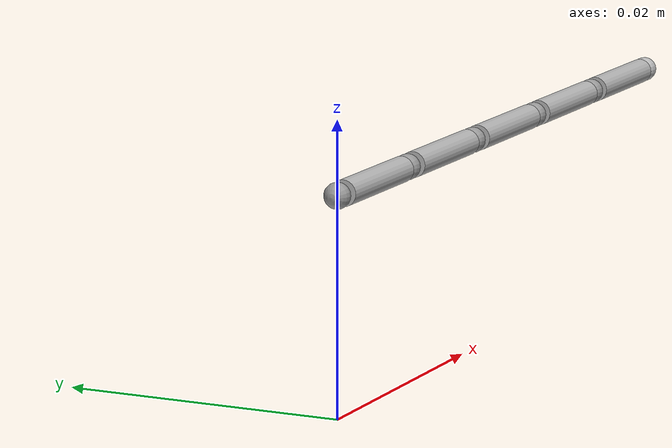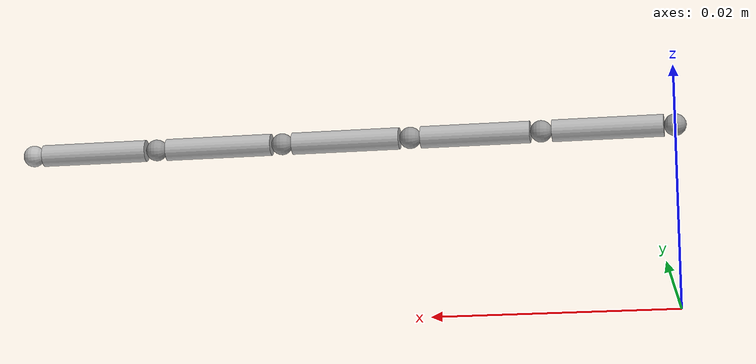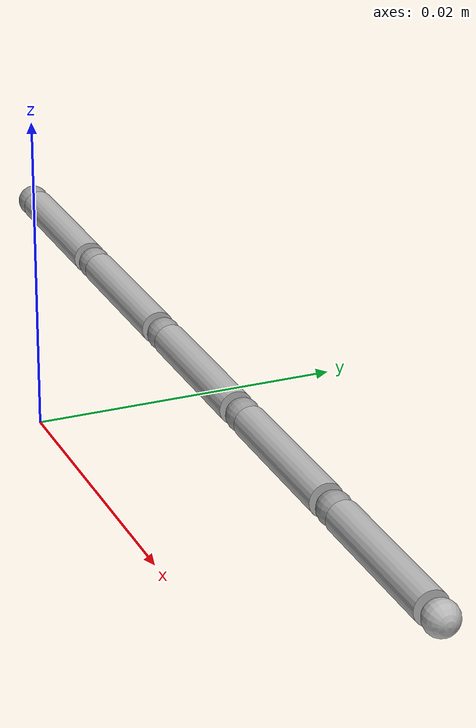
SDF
<?xml version="1.0" ?>
<sdf version='1.7'>
<model name="cable_modelD">
  <link name="segment_1_sphere">
    <pose>0 0 0.015 1.57 -0 -1.57</pose>
    <inertial>
      <pose>0 0 0 0 -0 0</pose>
      <mass>0.0025</mass>
      <inertia>
        <ixx>0.000001</ixx>
        <ixy>0</ixy>
        <ixz>0</ixz>
        <iyy>0.000001</iyy>
        <iyz>0</iyz>
        <izz>0.000001</izz>
      </inertia>
    </inertial>
    <collision name="segment_1_sphere_collision">
      <pose>0 0 0 0 -0 0</pose>
      <geometry>
        <sphere>
          <radius>0.0009</radius>
        </sphere>
      </geometry>
      <surface>
        <friction>
          <ode>
            <mu>0.001</mu>
            <mu2>0.001</mu2>
          </ode>
        </friction>
      </surface>
    </collision>
    <visual name="segment_1_sphere_visual">
      <pose>0 0 0 0 -0 0</pose>
      <geometry>
        <sphere>
          <radius>0.0009</radius>
        </sphere>
      </geometry>
      <material>
        <script>
          <name>Gazebo/Gray</name>
          <uri>file://media/materials/scripts/gazebo.material</uri>
        </script>
      </material>
    </visual>
    <self_collide>1</self_collide>
  </link>
  <joint name="segment_1_sphere_to_cylinder" type="ball">
    <pose relative_to="segment_1_sphere">0 0 0 0 -0 0</pose>
    <parent>segment_1_sphere</parent>
    <child>segment_1_cylinder</child>
    <axis>
      <xyz>1 0 0</xyz>
      <limit>
        <lower>-3.14</lower>
        <upper>3.14</upper>
        <effort>10</effort>
        <velocity>3</velocity>
      </limit>
      <dynamics>
        <damping>0.1</damping>
        <friction>0</friction>
        <spring_reference>0</spring_reference>
        <spring_stiffness>0</spring_stiffness>
      </dynamics>
    </axis>
  </joint>
  <link name="segment_1_cylinder">
    <pose relative_to="segment_1_sphere_to_cylinder">0 0 0 0 -0 0</pose>
    <inertial>
      <pose>0 0 -0.005399999999999999 0 -0 0</pose>
      <mass>0.0025</mass>
      <inertia>
        <ixx>0.000001</ixx>
        <ixy>0</ixy>
        <ixz>0</ixz>
        <iyy>0.000001</iyy>
        <iyz>0</iyz>
        <izz>0.000001</izz>
      </inertia>
    </inertial>
    <collision name="segment_1_cylinder_collision">
      <pose>0 0 -0.005399999999999999 0 -0 0</pose>
      <geometry>
        <cylinder>
          <length>0.009</length>
          <radius>0.0009</radius>
        </cylinder>
      </geometry>
      <surface>
        <friction>
          <ode>
            <mu>0.001</mu>
            <mu2>0.001</mu2>
          </ode>
        </friction>
        <contact>
          <ode>
            <soft_cfm>0.5</soft_cfm>
            <soft_erp>0.2</soft_erp>
            <kp>1500</kp>
            <kd>0.5</kd>
            <max_vel>0.2</max_vel>
            <min_depth>0.005</min_depth>
          </ode>
        </contact>
      </surface>
    </collision>
    <visual name="segment_1_cylinder_visual">
      <pose>0 0 -0.005399999999999999 0 -0 0</pose>
      <geometry>
        <cylinder>
          <length>0.009</length>
          <radius>0.0009</radius>
        </cylinder>
      </geometry>
    </visual>
    <self_collide>1</self_collide>
  </link>
  <joint name="segment_1_cylinder_to_segment_2_sphere" type="ball">
    <pose relative_to="segment_1_cylinder">0 0 -0.010799999999999999 0 -0 0</pose>
    <parent>segment_1_cylinder</parent>
    <child>segment_2_sphere</child>
    <axis>
      <xyz>0 1 0</xyz>
      <limit>
        <lower>-3.14</lower>
        <upper>3.14</upper>
        <effort>10</effort>
        <velocity>3</velocity>
      </limit>
      <dynamics>
        <damping>0.1</damping>
        <friction>0</friction>
        <spring_reference>0</spring_reference>
        <spring_stiffness>0</spring_stiffness>
      </dynamics>
    </axis>
  </joint>
  <link name="segment_2_sphere">
    <pose relative_to="segment_1_cylinder_to_segment_2_sphere">0 0 0 0 -0 0</pose>
    <inertial>
      <pose>0 0 0 0 -0 0</pose>
      <mass>0.0025</mass>
      <inertia>
        <ixx>0.000001</ixx>
        <ixy>0</ixy>
        <ixz>0</ixz>
        <iyy>0.000001</iyy>
        <iyz>0</iyz>
        <izz>0.000001</izz>
      </inertia>
    </inertial>
    <collision name="segment_2_sphere_collision">
      <pose>0 0 0 0 -0 0</pose>
      <geometry>
        <sphere>
          <radius>0.0009</radius>
        </sphere>
      </geometry>
      <surface>
        <friction>
          <ode>
            <mu>0.001</mu>
            <mu2>0.001</mu2>
          </ode>
        </friction>
      </surface>
    </collision>
    <visual name="segment_2_sphere_visual">
      <pose>0 0 0 0 -0 0</pose>
      <geometry>
        <sphere>
          <radius>0.0009</radius>
        </sphere>
      </geometry>
      <material>
        <script>
          <name>Gazebo/Gray</name>
          <uri>file://media/materials/scripts/gazebo.material</uri>
        </script>
      </material>
    </visual>
    <self_collide>1</self_collide>
  </link>
  <joint name="segment_2_sphere_to_cylinder" type="ball">
    <pose relative_to="segment_2_sphere">0 0 0 0 -0 0</pose>
    <parent>segment_2_sphere</parent>
    <child>segment_2_cylinder</child>
    <axis>
      <xyz>1 0 0</xyz>
      <limit>
        <lower>-3.14</lower>
        <upper>3.14</upper>
        <effort>10</effort>
        <velocity>3</velocity>
      </limit>
      <dynamics>
        <damping>0.1</damping>
        <friction>0</friction>
        <spring_reference>0</spring_reference>
        <spring_stiffness>0</spring_stiffness>
      </dynamics>
    </axis>
  </joint>
  <link name="segment_2_cylinder">
    <pose relative_to="segment_2_sphere_to_cylinder">0 0 0 0 -0 0</pose>
    <inertial>
      <pose>0 0 -0.005399999999999999 0 -0 0</pose>
      <mass>0.0025</mass>
      <inertia>
        <ixx>0.000001</ixx>
        <ixy>0</ixy>
        <ixz>0</ixz>
        <iyy>0.000001</iyy>
        <iyz>0</iyz>
        <izz>0.000001</izz>
      </inertia>
    </inertial>
    <collision name="segment_2_cylinder_collision">
      <pose>0 0 -0.005399999999999999 0 -0 0</pose>
      <geometry>
        <cylinder>
          <length>0.009</length>
          <radius>0.0009</radius>
        </cylinder>
      </geometry>
      <surface>
        <friction>
          <ode>
            <mu>0.001</mu>
            <mu2>0.001</mu2>
          </ode>
        </friction>
        <contact>
          <ode>
            <soft_cfm>0.5</soft_cfm>
            <soft_erp>0.2</soft_erp>
            <kp>1500</kp>
            <kd>0.5</kd>
            <max_vel>0.2</max_vel>
            <min_depth>0.005</min_depth>
          </ode>
        </contact>
      </surface>
    </collision>
    <visual name="segment_2_cylinder_visual">
      <pose>0 0 -0.005399999999999999 0 -0 0</pose>
      <geometry>
        <cylinder>
          <length>0.009</length>
          <radius>0.0009</radius>
        </cylinder>
      </geometry>
    </visual>
    <self_collide>1</self_collide>
  </link>
  <joint name="segment_2_cylinder_to_segment_3_sphere" type="ball">
    <pose relative_to="segment_2_cylinder">0 0 -0.010799999999999999 0 -0 0</pose>
    <parent>segment_2_cylinder</parent>
    <child>segment_3_sphere</child>
    <axis>
      <xyz>0 1 0</xyz>
      <limit>
        <lower>-3.14</lower>
        <upper>3.14</upper>
        <effort>10</effort>
        <velocity>3</velocity>
      </limit>
      <dynamics>
        <damping>0.1</damping>
        <friction>0</friction>
        <spring_reference>0</spring_reference>
        <spring_stiffness>0</spring_stiffness>
      </dynamics>
    </axis>
  </joint>
  <link name="segment_3_sphere">
    <pose relative_to="segment_2_cylinder_to_segment_3_sphere">0 0 0 0 -0 0</pose>
    <inertial>
      <pose>0 0 0 0 -0 0</pose>
      <mass>0.0025</mass>
      <inertia>
        <ixx>0.000001</ixx>
        <ixy>0</ixy>
        <ixz>0</ixz>
        <iyy>0.000001</iyy>
        <iyz>0</iyz>
        <izz>0.000001</izz>
      </inertia>
    </inertial>
    <collision name="segment_3_sphere_collision">
      <pose>0 0 0 0 -0 0</pose>
      <geometry>
        <sphere>
          <radius>0.0009</radius>
        </sphere>
      </geometry>
      <surface>
        <friction>
          <ode>
            <mu>0.001</mu>
            <mu2>0.001</mu2>
          </ode>
        </friction>
      </surface>
    </collision>
    <visual name="segment_3_sphere_visual">
      <pose>0 0 0 0 -0 0</pose>
      <geometry>
        <sphere>
          <radius>0.0009</radius>
        </sphere>
      </geometry>
      <material>
        <script>
          <name>Gazebo/Gray</name>
          <uri>file://media/materials/scripts/gazebo.material</uri>
        </script>
      </material>
    </visual>
    <self_collide>1</self_collide>
  </link>
  <joint name="segment_3_sphere_to_cylinder" type="ball">
    <pose relative_to="segment_3_sphere">0 0 0 0 -0 0</pose>
    <parent>segment_3_sphere</parent>
    <child>segment_3_cylinder</child>
    <axis>
      <xyz>1 0 0</xyz>
      <limit>
        <lower>-3.14</lower>
        <upper>3.14</upper>
        <effort>10</effort>
        <velocity>3</velocity>
      </limit>
      <dynamics>
        <damping>0.1</damping>
        <friction>0</friction>
        <spring_reference>0</spring_reference>
        <spring_stiffness>0</spring_stiffness>
      </dynamics>
    </axis>
  </joint>
  <link name="segment_3_cylinder">
    <pose relative_to="segment_3_sphere_to_cylinder">0 0 0 0 -0 0</pose>
    <inertial>
      <pose>0 0 -0.005399999999999999 0 -0 0</pose>
      <mass>0.0025</mass>
      <inertia>
        <ixx>0.000001</ixx>
        <ixy>0</ixy>
        <ixz>0</ixz>
        <iyy>0.000001</iyy>
        <iyz>0</iyz>
        <izz>0.000001</izz>
      </inertia>
    </inertial>
    <collision name="segment_3_cylinder_collision">
      <pose>0 0 -0.005399999999999999 0 -0 0</pose>
      <geometry>
        <cylinder>
          <length>0.009</length>
          <radius>0.0009</radius>
        </cylinder>
      </geometry>
      <surface>
        <friction>
          <ode>
            <mu>0.001</mu>
            <mu2>0.001</mu2>
          </ode>
        </friction>
        <contact>
          <ode>
            <soft_cfm>0.5</soft_cfm>
            <soft_erp>0.2</soft_erp>
            <kp>1500</kp>
            <kd>0.5</kd>
            <max_vel>0.2</max_vel>
            <min_depth>0.005</min_depth>
          </ode>
        </contact>
      </surface>
    </collision>
    <visual name="segment_3_cylinder_visual">
      <pose>0 0 -0.005399999999999999 0 -0 0</pose>
      <geometry>
        <cylinder>
          <length>0.009</length>
          <radius>0.0009</radius>
        </cylinder>
      </geometry>
    </visual>
    <self_collide>1</self_collide>
  </link>
  <joint name="segment_3_cylinder_to_segment_4_sphere" type="ball">
    <pose relative_to="segment_3_cylinder">0 0 -0.010799999999999999 0 -0 0</pose>
    <parent>segment_3_cylinder</parent>
    <child>segment_4_sphere</child>
    <axis>
      <xyz>0 1 0</xyz>
      <limit>
        <lower>-3.14</lower>
        <upper>3.14</upper>
        <effort>10</effort>
        <velocity>3</velocity>
      </limit>
      <dynamics>
        <damping>0.1</damping>
        <friction>0</friction>
        <spring_reference>0</spring_reference>
        <spring_stiffness>0</spring_stiffness>
      </dynamics>
    </axis>
  </joint>
  <link name="segment_4_sphere">
    <pose relative_to="segment_3_cylinder_to_segment_4_sphere">0 0 0 0 -0 0</pose>
    <inertial>
      <pose>0 0 0 0 -0 0</pose>
      <mass>0.0025</mass>
      <inertia>
        <ixx>0.000001</ixx>
        <ixy>0</ixy>
        <ixz>0</ixz>
        <iyy>0.000001</iyy>
        <iyz>0</iyz>
        <izz>0.000001</izz>
      </inertia>
    </inertial>
    <collision name="segment_4_sphere_collision">
      <pose>0 0 0 0 -0 0</pose>
      <geometry>
        <sphere>
          <radius>0.0009</radius>
        </sphere>
      </geometry>
      <surface>
        <friction>
          <ode>
            <mu>0.001</mu>
            <mu2>0.001</mu2>
          </ode>
        </friction>
      </surface>
    </collision>
    <visual name="segment_4_sphere_visual">
      <pose>0 0 0 0 -0 0</pose>
      <geometry>
        <sphere>
          <radius>0.0009</radius>
        </sphere>
      </geometry>
      <material>
        <script>
          <name>Gazebo/Gray</name>
          <uri>file://media/materials/scripts/gazebo.material</uri>
        </script>
      </material>
    </visual>
    <self_collide>1</self_collide>
  </link>
  <joint name="segment_4_sphere_to_cylinder" type="ball">
    <pose relative_to="segment_4_sphere">0 0 0 0 -0 0</pose>
    <parent>segment_4_sphere</parent>
    <child>segment_4_cylinder</child>
    <axis>
      <xyz>1 0 0</xyz>
      <limit>
        <lower>-3.14</lower>
        <upper>3.14</upper>
        <effort>10</effort>
        <velocity>3</velocity>
      </limit>
      <dynamics>
        <damping>0.1</damping>
        <friction>0</friction>
        <spring_reference>0</spring_reference>
        <spring_stiffness>0</spring_stiffness>
      </dynamics>
    </axis>
  </joint>
  <link name="segment_4_cylinder">
    <pose relative_to="segment_4_sphere_to_cylinder">0 0 0 0 -0 0</pose>
    <inertial>
      <pose>0 0 -0.005399999999999999 0 -0 0</pose>
      <mass>0.0025</mass>
      <inertia>
        <ixx>0.000001</ixx>
        <ixy>0</ixy>
        <ixz>0</ixz>
        <iyy>0.000001</iyy>
        <iyz>0</iyz>
        <izz>0.000001</izz>
      </inertia>
    </inertial>
    <collision name="segment_4_cylinder_collision">
      <pose>0 0 -0.005399999999999999 0 -0 0</pose>
      <geometry>
        <cylinder>
          <length>0.009</length>
          <radius>0.0009</radius>
        </cylinder>
      </geometry>
      <surface>
        <friction>
          <ode>
            <mu>0.001</mu>
            <mu2>0.001</mu2>
          </ode>
        </friction>
        <contact>
          <ode>
            <soft_cfm>0.5</soft_cfm>
            <soft_erp>0.2</soft_erp>
            <kp>1500</kp>
            <kd>0.5</kd>
            <max_vel>0.2</max_vel>
            <min_depth>0.005</min_depth>
          </ode>
        </contact>
      </surface>
    </collision>
    <visual name="segment_4_cylinder_visual">
      <pose>0 0 -0.005399999999999999 0 -0 0</pose>
      <geometry>
        <cylinder>
          <length>0.009</length>
          <radius>0.0009</radius>
        </cylinder>
      </geometry>
    </visual>
    <self_collide>1</self_collide>
  </link>
  <joint name="segment_4_cylinder_to_segment_5_sphere" type="ball">
    <pose relative_to="segment_4_cylinder">0 0 -0.010799999999999999 0 -0 0</pose>
    <parent>segment_4_cylinder</parent>
    <child>segment_5_sphere</child>
    <axis>
      <xyz>0 1 0</xyz>
      <limit>
        <lower>-3.14</lower>
        <upper>3.14</upper>
        <effort>10</effort>
        <velocity>3</velocity>
      </limit>
      <dynamics>
        <damping>0.1</damping>
        <friction>0</friction>
        <spring_reference>0</spring_reference>
        <spring_stiffness>0</spring_stiffness>
      </dynamics>
    </axis>
  </joint>
  <link name="segment_5_sphere">
    <pose relative_to="segment_4_cylinder_to_segment_5_sphere">0 0 0 0 -0 0</pose>
    <inertial>
      <pose>0 0 0 0 -0 0</pose>
      <mass>0.0025</mass>
      <inertia>
        <ixx>0.000001</ixx>
        <ixy>0</ixy>
        <ixz>0</ixz>
        <iyy>0.000001</iyy>
        <iyz>0</iyz>
        <izz>0.000001</izz>
      </inertia>
    </inertial>
    <collision name="segment_5_sphere_collision">
      <pose>0 0 0 0 -0 0</pose>
      <geometry>
        <sphere>
          <radius>0.0009</radius>
        </sphere>
      </geometry>
      <surface>
        <friction>
          <ode>
            <mu>0.001</mu>
            <mu2>0.001</mu2>
          </ode>
        </friction>
      </surface>
    </collision>
    <visual name="segment_5_sphere_visual">
      <pose>0 0 0 0 -0 0</pose>
      <geometry>
        <sphere>
          <radius>0.0009</radius>
        </sphere>
      </geometry>
      <material>
        <script>
          <name>Gazebo/Gray</name>
          <uri>file://media/materials/scripts/gazebo.material</uri>
        </script>
      </material>
    </visual>
    <self_collide>1</self_collide>
  </link>
  <joint name="segment_5_sphere_to_cylinder" type="ball">
    <pose relative_to="segment_5_sphere">0 0 0 0 -0 0</pose>
    <parent>segment_5_sphere</parent>
    <child>segment_5_cylinder</child>
    <axis>
      <xyz>1 0 0</xyz>
      <limit>
        <lower>-3.14</lower>
        <upper>3.14</upper>
        <effort>10</effort>
        <velocity>3</velocity>
      </limit>
      <dynamics>
        <damping>0.1</damping>
        <friction>0</friction>
        <spring_reference>0</spring_reference>
        <spring_stiffness>0</spring_stiffness>
      </dynamics>
    </axis>
  </joint>
  <link name="segment_5_cylinder">
    <pose relative_to="segment_5_sphere_to_cylinder">0 0 0 0 -0 0</pose>
    <inertial>
      <pose>0 0 -0.005399999999999999 0 -0 0</pose>
      <mass>0.0025</mass>
      <inertia>
        <ixx>0.000001</ixx>
        <ixy>0</ixy>
        <ixz>0</ixz>
        <iyy>0.000001</iyy>
        <iyz>0</iyz>
        <izz>0.000001</izz>
      </inertia>
    </inertial>
    <collision name="segment_5_cylinder_collision">
      <pose>0 0 -0.005399999999999999 0 -0 0</pose>
      <geometry>
        <cylinder>
          <length>0.009</length>
          <radius>0.0009</radius>
        </cylinder>
      </geometry>
      <surface>
        <friction>
          <ode>
            <mu>0.001</mu>
            <mu2>0.001</mu2>
          </ode>
        </friction>
        <contact>
          <ode>
            <soft_cfm>0.5</soft_cfm>
            <soft_erp>0.2</soft_erp>
            <kp>1500</kp>
            <kd>0.5</kd>
            <max_vel>0.2</max_vel>
            <min_depth>0.005</min_depth>
          </ode>
        </contact>
      </surface>
    </collision>
    <visual name="segment_5_cylinder_visual">
      <pose>0 0 -0.005399999999999999 0 -0 0</pose>
      <geometry>
        <cylinder>
          <length>0.009</length>
          <radius>0.0009</radius>
        </cylinder>
      </geometry>
    </visual>
    <self_collide>1</self_collide>
  </link>
  <joint name="joint_end_sphere" type="ball">
    <pose relative_to="segment_5_cylinder">0 0 -0.010799999999999999 0 -0 0</pose>
    <parent>segment_5_cylinder</parent>
    <child>end_sphere</child>
    <axis>
      <xyz>0 1 0</xyz>
      <limit>
        <lower>-1.57</lower>
        <upper>1.57</upper>
        <effort>10</effort>
        <velocity>3</velocity>
      </limit>
      <dynamics>
        <damping>0.1</damping>
        <friction>0</friction>
        <spring_reference>0</spring_reference>
        <spring_stiffness>0</spring_stiffness>
      </dynamics>
    </axis>
  </joint>
  <link name="end_sphere">
    <pose relative_to="joint_end_sphere">0 0 0 0 -0 0</pose>
    <inertial>
      <pose>0 0 0 0 -0 0</pose>
      <mass>0.0025</mass>
      <inertia>
        <ixx>0.000001</ixx>
        <ixy>0</ixy>
        <ixz>0</ixz>
        <iyy>0.000001</iyy>
        <iyz>0</iyz>
        <izz>0.000001</izz>
      </inertia>
    </inertial>
    <collision name="end_sphere_collision">
      <pose>0 0 0 0 -0 0</pose>
      <geometry>
        <sphere>
          <radius>0.0009</radius>
        </sphere>
      </geometry>
      <surface>
        <friction>
          <ode>
            <mu>0.001</mu>
            <mu2>0.001</mu2>
          </ode>
        </friction>
      </surface>
    </collision>
    <visual name="end_sphere_visual">
      <pose>0 0 0 0 -0 0</pose>
      <geometry>
        <sphere>
          <radius>0.0009</radius>
        </sphere>
      </geometry>
    </visual>
  </link>
  <self_collide>1</self_collide>
</model>
</sdf>
